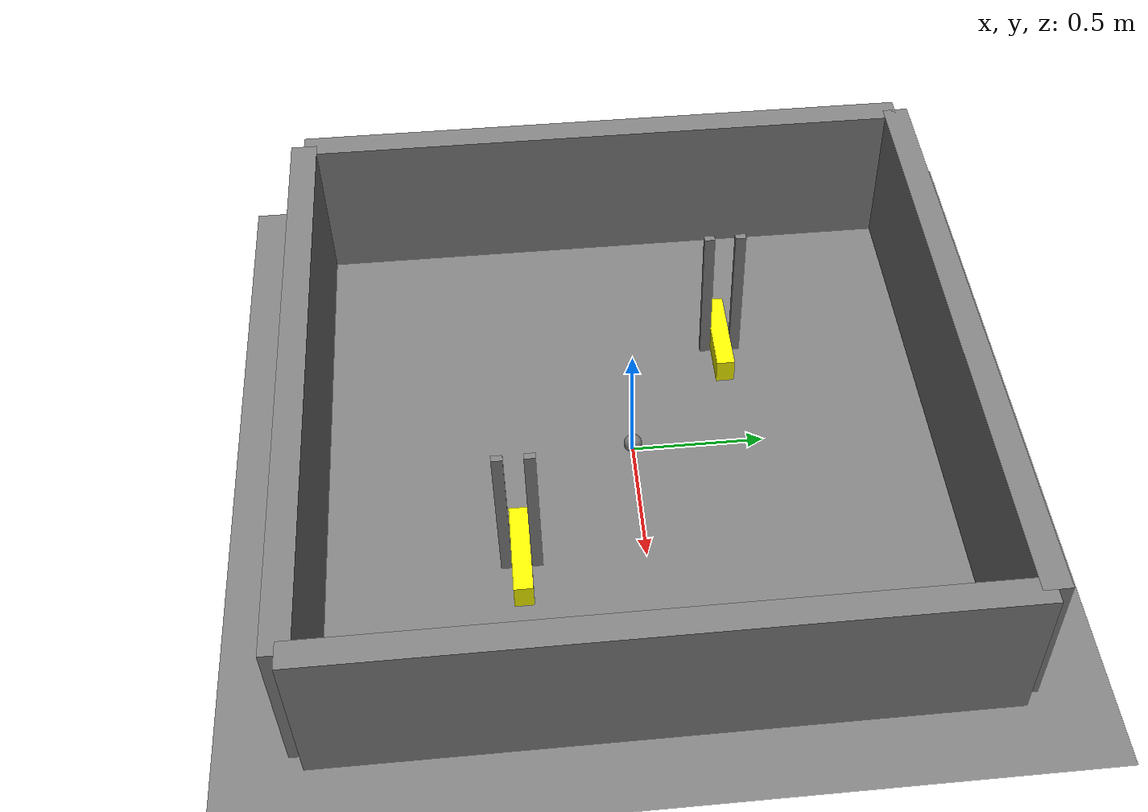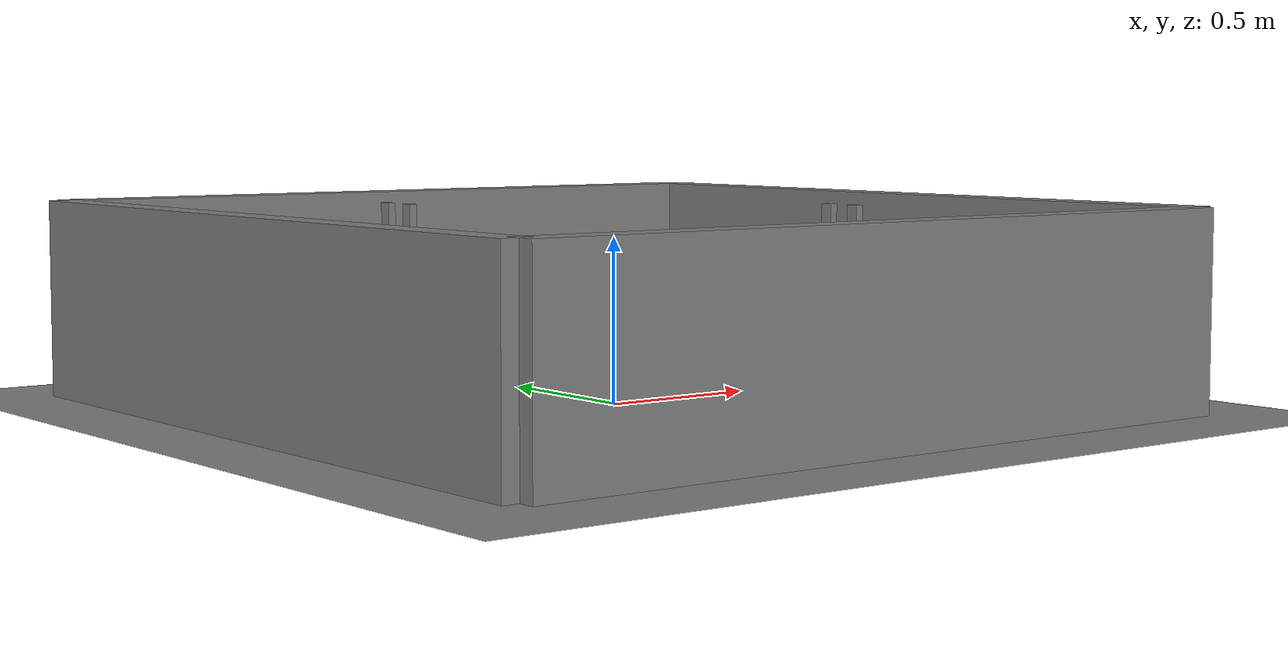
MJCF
<?xml version="1.0"?>
<mujoco model="rotation_jam_fixture">
  <option cone="elliptic" integrator="RK4" timestep="0.01"/>
  <default>
    <geom density="1"/>
  </default>
  <worldbody>
    <geom name="floor" type="plane" size="0 0 0.05" friction="0.5 0.005 0.001" condim="4"/>
    <body name="walls">
      <geom name="wall_1" type="box" pos="-1.2 0 0.3" size="0.05 1.2 0.3"/>
      <geom name="wall_2" type="box" pos="1.2 0 0.3" size="0.05 1.2 0.3"/>
      <geom name="wall_3" type="box" pos="0 -1.2 0.3" size="1.2 0.05 0.3"/>
      <geom name="wall_4" type="box" pos="0 1.2 0.3" size="1.2 0.05 0.3"/>
      <!-- pivot for the bar that can turn: 4 mm either side -->
      <geom name="pivot_a_top" type="box" pos="-0.5 0.459 0.3" size="0.012 0.02 0.3"/>
      <geom name="pivot_a_bottom" type="box" pos="-0.5 0.341 0.3" size="0.012 0.02 0.3"/>
      <!-- pivot for the bar that cannot: 0.05 mm either side -->
      <geom name="pivot_b_top" type="box" pos="0.5 -0.39505 0.3" size="0.012 0.02 0.3"/>
      <geom name="pivot_b_bottom" type="box" pos="0.5 -0.50495 0.3" size="0.012 0.02 0.3"/>
    </body>
    <body name="robot">
      <joint name="joint_x" type="slide" axis="1 0 0"/>
      <joint name="joint_y" type="slide" axis="0 1 0"/>
      <geom name="robot" type="sphere" pos="0.0 0.0 0.035" size="0.035" mass="5" friction="1 0.005 0.0001" condim="4"/>
    </body>
    <body name="obstacle_1_movable">
      <joint type="free"/>
      <geom name="obstacle_1_movable" type="box" pos="-0.5 0.4 0.05" size="0.18 0.035 0.05" mass="0.1" friction="0 0.005 0.001" condim="4" rgba="1 1 0 1"/>
    </body>
    <body name="obstacle_2_movable">
      <joint type="free"/>
      <geom name="obstacle_2_movable" type="box" pos="0.5 -0.45 0.05" size="0.18 0.035 0.05" mass="0.1" friction="0 0.005 0.001" condim="4" rgba="1 1 0 1"/>
    </body>
    <site name="goal" type="sphere" pos="0.9 0.9 0" size="0.1" rgba="0 1 0 0.5"/>
  </worldbody>
  <actuator>
    <velocity name="actuator_x" joint="joint_x" kv="50" ctrlrange="-0.5 0.5" forcerange="-20 20"/>
    <velocity name="actuator_y" joint="joint_y" kv="50" ctrlrange="-0.5 0.5" forcerange="-20 20"/>
  </actuator>
</mujoco>
